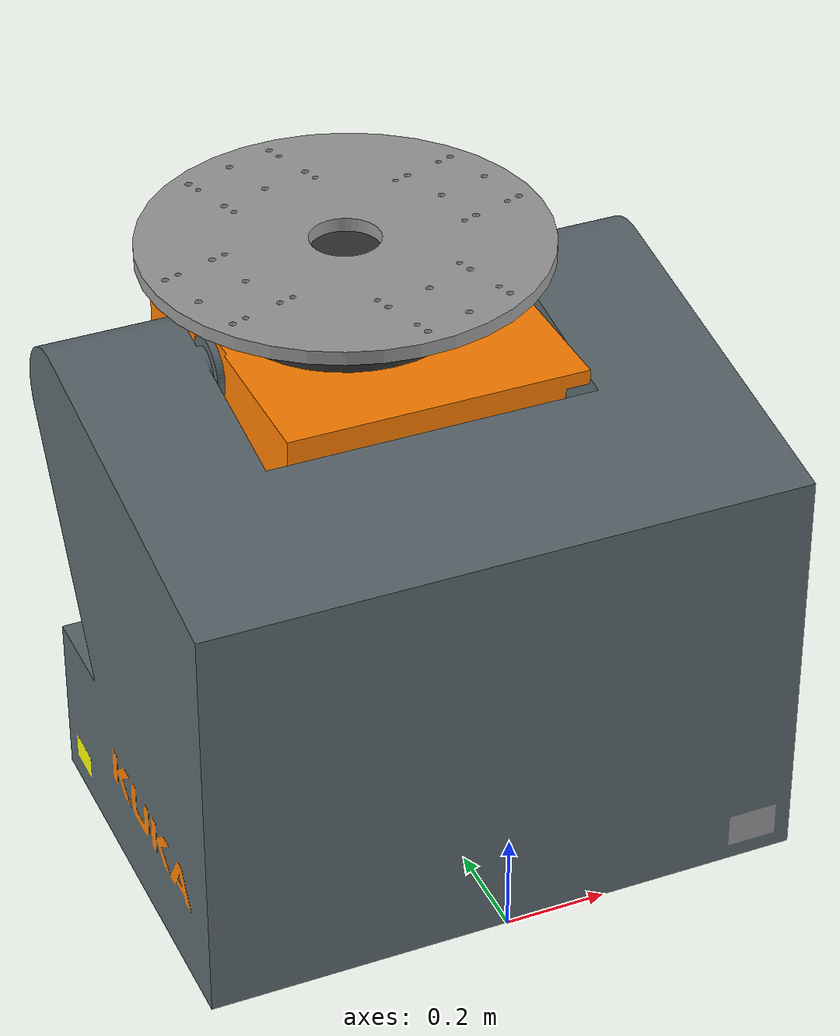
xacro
<?xml version="1.0"?>
<!--Generates a urdf from the macro in kp2hv1100_hw_macro.xacro -->
<robot name="kuka_kp2hv1100_hw" xmlns:xacro="http://wiki.ros.org/xacro">
    <xacro:include filename="$(find kuka_kp2_support)/urdf/kp2hv1100_hw_macro.xacro" />
    <xacro:kuka_kp2hv1100_hw prefix="kp2_"/>
</robot>

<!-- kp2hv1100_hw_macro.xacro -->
<robot xmlns:xacro="http://wiki.ros.org/xacro">

  <xacro:property name="DEG2RAD" value="0.017453292519943295"/>
  <xacro:macro name="kuka_kp2hv1100_hw" params="prefix">
    <!-- LINKS -->
    <!-- base link -->
    <link name="${prefix}base_link">
      <visual>
        <origin xyz="0 0 0" rpy="0 0 0"/>
        <geometry>
          <mesh filename="package://kuka_kp2_support/meshes/kp2hv1100HW/visual/base_link.dae" />
        </geometry>
      </visual>
      <collision>
        <origin xyz="0 0 0" rpy="0 0 0"/>
        <geometry>
          <mesh filename="package://kuka_kp2_support/meshes/kp2hv1100HW/collision/base_link.stl" />
        </geometry>
      </collision>
    </link>
    <!-- link 1 (A1) -->
    <link name="${prefix}link_1">
      <inertial>
        <origin xyz="0 -0.77 -0.865" rpy="0 0 0"/>
        <mass value="2"/>
        <inertia ixx="0.01" ixy="0" ixz="0" iyy="0.01" iyz="0" izz="0.01" />
      </inertial>
      <visual>
        <origin xyz="0 -0.770 -0.865" rpy="0 0 0"/>
        <geometry>
          <mesh filename="package://kuka_kp2_support/meshes/kp2hv1100HW/visual/link_1.dae" />
        </geometry>
      </visual>
      <collision>
        <origin xyz="0 -0.77 -0.865" rpy="0 0 0"/>
        <geometry>
          <mesh filename="package://kuka_kp2_support/meshes/kp2hv1100HW/collision/link_1.stl" />
        </geometry>
      </collision>
    </link>
    <!-- link 2 -->
    <link name="${prefix}link_2">
      <inertial>
        <origin xyz="0 -0.770 -1.085" rpy="0 0 0"/>
        <mass value="2"/>
        <inertia ixx="0.01" ixy="0" ixz="0" iyy="0.01" iyz="0" izz="0.01" />
      </inertial>
      <visual>
        <origin xyz="0 -0.770 -1.085" rpy="0 0 0"/>
        <geometry>
          <mesh filename="package://kuka_kp2_support/meshes/kp2hv1100HW/visual/link_2.dae"/>
        </geometry>
      </visual>
      <collision>
        <origin xyz="0 -0.770 -1.085" rpy="0 0 0"/>
        <geometry>
          <mesh filename="package://kuka_kp2_support/meshes/kp2hv1100HW/collision/link_2.stl" />
        </geometry>
      </collision>
    </link>

    <link name="${prefix}tool0"/>
    <!-- END LINKS -->

    <!-- JOINTS -->
    <!-- joint 1 (A1) -->
    <joint name="${prefix}joint_a1" type="revolute">
      <origin xyz="0 0.770 0.865" rpy="0 0 0"/>
      <parent link="${prefix}base_link"/>
      <child link="${prefix}link_1"/>
      <axis xyz="1 0 0"/>
      <limit effort="0" lower="${-DEG2RAD * 185}" upper="${DEG2RAD * 185}" velocity="${DEG2RAD * 105}"/>
    </joint>
    <!-- joint 2 (A2) -->
    <joint name="${prefix}joint_a2" type="revolute">
      <origin xyz="0 0 0.22" rpy="0 0 0"/><!--For an aligned coordinate system for the plate use rpy="0 0 1.2653638"-->
      <parent link="${prefix}link_1"/>
      <child link="${prefix}link_2"/>
      <axis xyz="0 0 1"/>
      <limit effort="0" lower="${-DEG2RAD * 140}" upper="${-DEG2RAD * 5}" velocity="${DEG2RAD * 101}"/>
    </joint>

    <!-- tool frame - fixed frame -->
    <joint name="${prefix}joint_a2-tool0" type="fixed">
      <parent link="${prefix}link_2"/>
      <child link="${prefix}tool0"/>
      <origin xyz="0 0 0" rpy="0 0 0"/>
    </joint>
    <!-- END JOINTS -->

    <!-- ROS base_link to KUKA $ROBROOT coordinate system transform -->
    <link name="${prefix}base" />
    <joint name="${prefix}base_link-base" type="fixed">
      <origin xyz="0 0 0" rpy="0 0 0"/>
      <parent link="${prefix}base_link"/>
      <child link="${prefix}base"/>
    </joint>

  </xacro:macro>
</robot>
